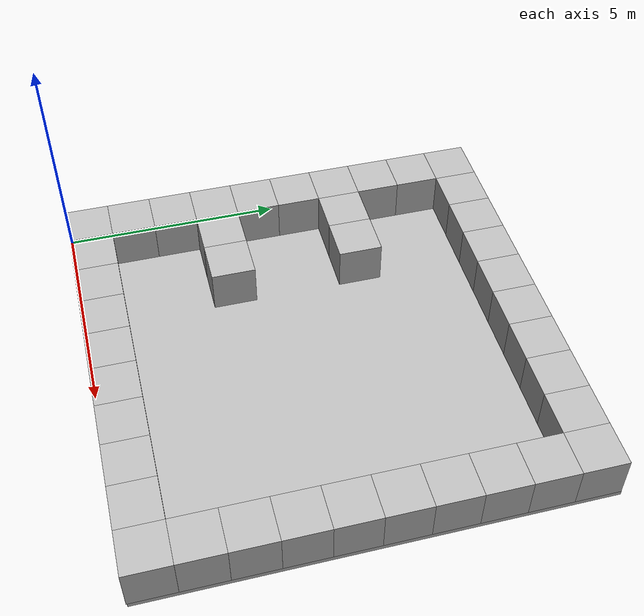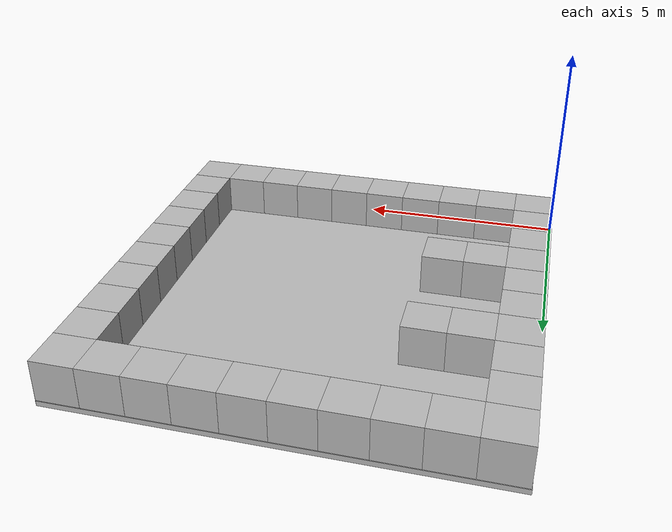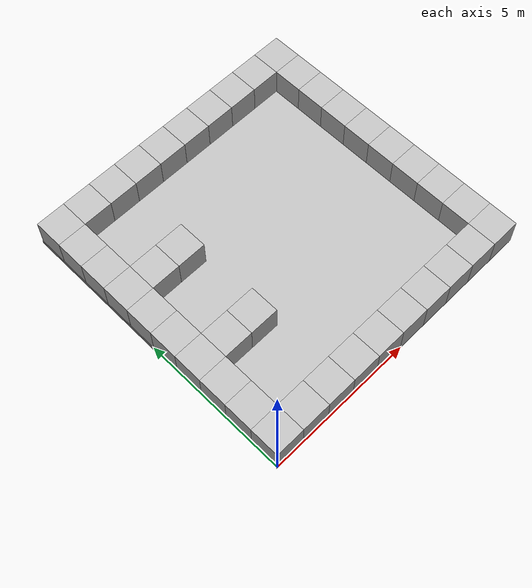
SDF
<sdf version="1.6">
 <world name="default">
  <light name="sun" type="directional">
   <diffuse>0.8 0.8 0.8 1</diffuse>
   <specular>0.1 0.1 0.1 1</specular>
   <attenuation>
    <range>1000</range>
    <constant>0.9</constant>
    <linear>0.01</linear>
    <quadratic>0.001</quadratic>
   </attenuation>
   <direction>-0.5 0.5 -1</direction>
  </light>
  <model name="floor">
   <pose>4.98846 5.01814 -0.0625 0 -0 0</pose>
   <static>1</static>
   <link name="link">
    <collision name="collision"><geometry><box><size>10 10 0.125</size></box></geometry></collision>
    <visual name="visual"><geometry><box><size>10 10 0.125</size></box></geometry></visual>
   </link>
  </model>
  <model name="box_0_0">
   <pose>0.5 0.5 0.5 0 -0 0</pose>
   <static>1</static>
   <link name="link">
    <collision name="collision"><geometry><box><size>1 1 1</size></box></geometry></collision>
    <visual name="visual"><geometry><box><size>1 1 1</size></box></geometry></visual>
   </link>
  </model>
  <model name="box_0_1">
   <pose>0.5 1.5 0.5 0 -0 0</pose>
   <static>1</static>
   <link name="link">
    <collision name="collision"><geometry><box><size>1 1 1</size></box></geometry></collision>
    <visual name="visual"><geometry><box><size>1 1 1</size></box></geometry></visual>
   </link>
  </model>
  <model name="box_0_2">
   <pose>0.5 2.5 0.5 0 -0 0</pose>
   <static>1</static>
   <link name="link">
    <collision name="collision"><geometry><box><size>1 1 1</size></box></geometry></collision>
    <visual name="visual"><geometry><box><size>1 1 1</size></box></geometry></visual>
   </link>
  </model>
  <model name="box_0_3">
   <pose>0.5 3.5 0.5 0 -0 0</pose>
   <static>1</static>
   <link name="link">
    <collision name="collision"><geometry><box><size>1 1 1</size></box></geometry></collision>
    <visual name="visual"><geometry><box><size>1 1 1</size></box></geometry></visual>
   </link>
  </model>
  <model name="box_0_4">
   <pose>0.5 4.5 0.5 0 -0 0</pose>
   <static>1</static>
   <link name="link">
    <collision name="collision"><geometry><box><size>1 1 1</size></box></geometry></collision>
    <visual name="visual"><geometry><box><size>1 1 1</size></box></geometry></visual>
   </link>
  </model>
  <model name="box_0_5">
   <pose>0.5 5.5 0.5 0 -0 0</pose>
   <static>1</static>
   <link name="link">
    <collision name="collision"><geometry><box><size>1 1 1</size></box></geometry></collision>
    <visual name="visual"><geometry><box><size>1 1 1</size></box></geometry></visual>
   </link>
  </model>
  <model name="box_0_6">
   <pose>0.5 6.5 0.5 0 -0 0</pose>
   <static>1</static>
   <link name="link">
    <collision name="collision"><geometry><box><size>1 1 1</size></box></geometry></collision>
    <visual name="visual"><geometry><box><size>1 1 1</size></box></geometry></visual>
   </link>
  </model>
  <model name="box_0_7">
   <pose>0.5 7.5 0.5 0 -0 0</pose>
   <static>1</static>
   <link name="link">
    <collision name="collision"><geometry><box><size>1 1 1</size></box></geometry></collision>
    <visual name="visual"><geometry><box><size>1 1 1</size></box></geometry></visual>
   </link>
  </model>
  <model name="box_0_8">
   <pose>0.5 8.5 0.5 0 -0 0</pose>
   <static>1</static>
   <link name="link">
    <collision name="collision"><geometry><box><size>1 1 1</size></box></geometry></collision>
    <visual name="visual"><geometry><box><size>1 1 1</size></box></geometry></visual>
   </link>
  </model>
  <model name="box_0_9">
   <pose>0.5 9.5 0.5 0 -0 0</pose>
   <static>1</static>
   <link name="link">
    <collision name="collision"><geometry><box><size>1 1 1</size></box></geometry></collision>
    <visual name="visual"><geometry><box><size>1 1 1</size></box></geometry></visual>
   </link>
  </model>
  <model name="box_1_0">
   <pose>1.5 0.5 0.5 0 -0 0</pose>
   <static>1</static>
   <link name="link">
    <collision name="collision"><geometry><box><size>1 1 1</size></box></geometry></collision>
    <visual name="visual"><geometry><box><size>1 1 1</size></box></geometry></visual>
   </link>
  </model>
  <model name="box_1_3">
   <pose>1.5 3.5 0.5 0 -0 0</pose>
   <static>1</static>
   <link name="link">
    <collision name="collision"><geometry><box><size>1 1 1</size></box></geometry></collision>
    <visual name="visual"><geometry><box><size>1 1 1</size></box></geometry></visual>
   </link>
  </model>
  <model name="box_1_6">
   <pose>1.5 6.5 0.5 0 -0 0</pose>
   <static>1</static>
   <link name="link">
    <collision name="collision"><geometry><box><size>1 1 1</size></box></geometry></collision>
    <visual name="visual"><geometry><box><size>1 1 1</size></box></geometry></visual>
   </link>
  </model>
  <model name="box_1_9">
   <pose>1.5 9.5 0.5 0 -0 0</pose>
   <static>1</static>
   <link name="link">
    <collision name="collision"><geometry><box><size>1 1 1</size></box></geometry></collision>
    <visual name="visual"><geometry><box><size>1 1 1</size></box></geometry></visual>
   </link>
  </model>
  <model name="box_2_0">
   <pose>2.5 0.5 0.5 0 -0 0</pose>
   <static>1</static>
   <link name="link">
    <collision name="collision"><geometry><box><size>1 1 1</size></box></geometry></collision>
    <visual name="visual"><geometry><box><size>1 1 1</size></box></geometry></visual>
   </link>
  </model>
  <model name="box_2_3">
   <pose>2.5 3.5 0.5 0 -0 0</pose>
   <static>1</static>
   <link name="link">
    <collision name="collision"><geometry><box><size>1 1 1</size></box></geometry></collision>
    <visual name="visual"><geometry><box><size>1 1 1</size></box></geometry></visual>
   </link>
  </model>
  <model name="box_2_6">
   <pose>2.5 6.5 0.5 0 -0 0</pose>
   <static>1</static>
   <link name="link">
    <collision name="collision"><geometry><box><size>1 1 1</size></box></geometry></collision>
    <visual name="visual"><geometry><box><size>1 1 1</size></box></geometry></visual>
   </link>
  </model>
  <model name="box_2_9">
   <pose>2.5 9.5 0.5 0 -0 0</pose>
   <static>1</static>
   <link name="link">
    <collision name="collision"><geometry><box><size>1 1 1</size></box></geometry></collision>
    <visual name="visual"><geometry><box><size>1 1 1</size></box></geometry></visual>
   </link>
  </model>
  <model name="box_3_0">
   <pose>3.5 0.5 0.5 0 -0 0</pose>
   <static>1</static>
   <link name="link">
    <collision name="collision"><geometry><box><size>1 1 1</size></box></geometry></collision>
    <visual name="visual"><geometry><box><size>1 1 1</size></box></geometry></visual>
   </link>
  </model>
  <model name="box_3_9">
   <pose>3.5 9.5 0.5 0 -0 0</pose>
   <static>1</static>
   <link name="link">
    <collision name="collision"><geometry><box><size>1 1 1</size></box></geometry></collision>
    <visual name="visual"><geometry><box><size>1 1 1</size></box></geometry></visual>
   </link>
  </model>
  <model name="box_4_0">
   <pose>4.5 0.5 0.5 0 -0 0</pose>
   <static>1</static>
   <link name="link">
    <collision name="collision"><geometry><box><size>1 1 1</size></box></geometry></collision>
    <visual name="visual"><geometry><box><size>1 1 1</size></box></geometry></visual>
   </link>
  </model>
  <model name="box_4_9">
   <pose>4.5 9.5 0.5 0 -0 0</pose>
   <static>1</static>
   <link name="link">
    <collision name="collision"><geometry><box><size>1 1 1</size></box></geometry></collision>
    <visual name="visual"><geometry><box><size>1 1 1</size></box></geometry></visual>
   </link>
  </model>
  <model name="box_5_0">
   <pose>5.5 0.5 0.5 0 -0 0</pose>
   <static>1</static>
   <link name="link">
    <collision name="collision"><geometry><box><size>1 1 1</size></box></geometry></collision>
    <visual name="visual"><geometry><box><size>1 1 1</size></box></geometry></visual>
   </link>
  </model>
  <model name="box_5_9">
   <pose>5.5 9.5 0.5 0 -0 0</pose>
   <static>1</static>
   <link name="link">
    <collision name="collision"><geometry><box><size>1 1 1</size></box></geometry></collision>
    <visual name="visual"><geometry><box><size>1 1 1</size></box></geometry></visual>
   </link>
  </model>
  <model name="box_6_0">
   <pose>6.5 0.5 0.5 0 -0 0</pose>
   <static>1</static>
   <link name="link">
    <collision name="collision"><geometry><box><size>1 1 1</size></box></geometry></collision>
    <visual name="visual"><geometry><box><size>1 1 1</size></box></geometry></visual>
   </link>
  </model>
  <model name="box_6_9">
   <pose>6.5 9.5 0.5 0 -0 0</pose>
   <static>1</static>
   <link name="link">
    <collision name="collision"><geometry><box><size>1 1 1</size></box></geometry></collision>
    <visual name="visual"><geometry><box><size>1 1 1</size></box></geometry></visual>
   </link>
  </model>
  <model name="box_7_0">
   <pose>7.5 0.5 0.5 0 -0 0</pose>
   <static>1</static>
   <link name="link">
    <collision name="collision"><geometry><box><size>1 1 1</size></box></geometry></collision>
    <visual name="visual"><geometry><box><size>1 1 1</size></box></geometry></visual>
   </link>
  </model>
  <model name="box_7_9">
   <pose>7.5 9.5 0.5 0 -0 0</pose>
   <static>1</static>
   <link name="link">
    <collision name="collision"><geometry><box><size>1 1 1</size></box></geometry></collision>
    <visual name="visual"><geometry><box><size>1 1 1</size></box></geometry></visual>
   </link>
  </model>
  <model name="box_8_0">
   <pose>8.5 0.5 0.5 0 -0 0</pose>
   <static>1</static>
   <link name="link">
    <collision name="collision"><geometry><box><size>1 1 1</size></box></geometry></collision>
    <visual name="visual"><geometry><box><size>1 1 1</size></box></geometry></visual>
   </link>
  </model>
  <model name="box_8_9">
   <pose>8.5 9.5 0.5 0 -0 0</pose>
   <static>1</static>
   <link name="link">
    <collision name="collision"><geometry><box><size>1 1 1</size></box></geometry></collision>
    <visual name="visual"><geometry><box><size>1 1 1</size></box></geometry></visual>
   </link>
  </model>
  <model name="box_9_0">
   <pose>9.5 0.5 0.5 0 -0 0</pose>
   <static>1</static>
   <link name="link">
    <collision name="collision"><geometry><box><size>1 1 1</size></box></geometry></collision>
    <visual name="visual"><geometry><box><size>1 1 1</size></box></geometry></visual>
   </link>
  </model>
  <model name="box_9_1">
   <pose>9.5 1.5 0.5 0 -0 0</pose>
   <static>1</static>
   <link name="link">
    <collision name="collision"><geometry><box><size>1 1 1</size></box></geometry></collision>
    <visual name="visual"><geometry><box><size>1 1 1</size></box></geometry></visual>
   </link>
  </model>
  <model name="box_9_2">
   <pose>9.5 2.5 0.5 0 -0 0</pose>
   <static>1</static>
   <link name="link">
    <collision name="collision"><geometry><box><size>1 1 1</size></box></geometry></collision>
    <visual name="visual"><geometry><box><size>1 1 1</size></box></geometry></visual>
   </link>
  </model>
  <model name="box_9_3">
   <pose>9.5 3.5 0.5 0 -0 0</pose>
   <static>1</static>
   <link name="link">
    <collision name="collision"><geometry><box><size>1 1 1</size></box></geometry></collision>
    <visual name="visual"><geometry><box><size>1 1 1</size></box></geometry></visual>
   </link>
  </model>
  <model name="box_9_4">
   <pose>9.5 4.5 0.5 0 -0 0</pose>
   <static>1</static>
   <link name="link">
    <collision name="collision"><geometry><box><size>1 1 1</size></box></geometry></collision>
    <visual name="visual"><geometry><box><size>1 1 1</size></box></geometry></visual>
   </link>
  </model>
  <model name="box_9_5">
   <pose>9.5 5.5 0.5 0 -0 0</pose>
   <static>1</static>
   <link name="link">
    <collision name="collision"><geometry><box><size>1 1 1</size></box></geometry></collision>
    <visual name="visual"><geometry><box><size>1 1 1</size></box></geometry></visual>
   </link>
  </model>
  <model name="box_9_6">
   <pose>9.5 6.5 0.5 0 -0 0</pose>
   <static>1</static>
   <link name="link">
    <collision name="collision"><geometry><box><size>1 1 1</size></box></geometry></collision>
    <visual name="visual"><geometry><box><size>1 1 1</size></box></geometry></visual>
   </link>
  </model>
  <model name="box_9_7">
   <pose>9.5 7.5 0.5 0 -0 0</pose>
   <static>1</static>
   <link name="link">
    <collision name="collision"><geometry><box><size>1 1 1</size></box></geometry></collision>
    <visual name="visual"><geometry><box><size>1 1 1</size></box></geometry></visual>
   </link>
  </model>
  <model name="box_9_8">
   <pose>9.5 8.5 0.5 0 -0 0</pose>
   <static>1</static>
   <link name="link">
    <collision name="collision"><geometry><box><size>1 1 1</size></box></geometry></collision>
    <visual name="visual"><geometry><box><size>1 1 1</size></box></geometry></visual>
   </link>
  </model>
  <model name="box_9_9">
   <pose>9.5 9.5 0.5 0 -0 0</pose>
   <static>1</static>
   <link name="link">
    <collision name="collision"><geometry><box><size>1 1 1</size></box></geometry></collision>
    <visual name="visual"><geometry><box><size>1 1 1</size></box></geometry></visual>
   </link>
  </model>
  <gravity>0 0 -9.8</gravity>
  <magnetic_field>6e-06 2.3e-05 -4.2e-05</magnetic_field>
  <atmosphere type="adiabatic"/>
  <physics name="default_physics" default="0" type="ode">
   <max_step_size>0.001</max_step_size>
   <real_time_factor>1</real_time_factor>
   <real_time_update_rate>1000</real_time_update_rate>
  </physics>
  <scene><ambient>0.4 0.4 0.4 1</ambient><background>0.7 0.7 0.7 1</background><shadows>1</shadows></scene>
  <spherical_coordinates>
   <surface_model>EARTH_WGS84</surface_model>
   <latitude_deg>0</latitude_deg>
   <longitude_deg>0</longitude_deg>
   <elevation>0</elevation>
   <heading_deg>0</heading_deg>
  </spherical_coordinates>
 </world>
</sdf>
